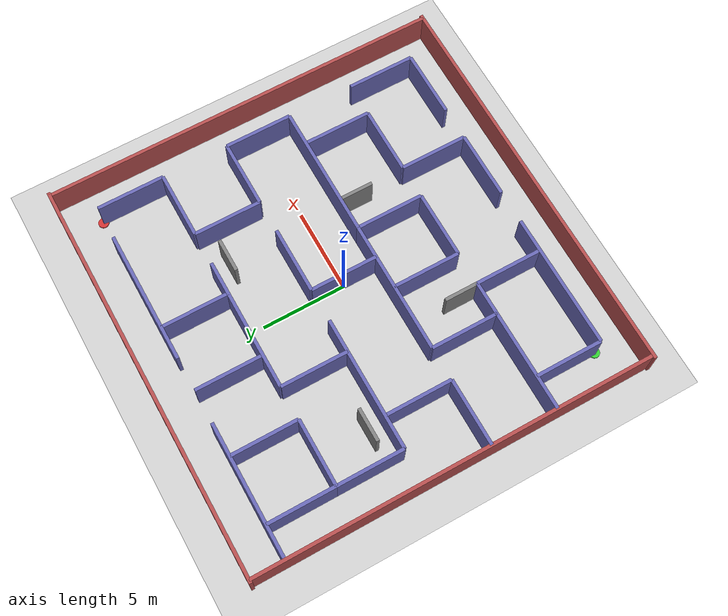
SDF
<?xml version="1.0"?>
<sdf version="1.9" xmlns:xsi="http://www.w3.org/2001/XMLSchema-instance"
    xsi:noNamespaceSchemaLocation="http://sdformat.org/schemas/root.xsd">
    <world name="complex_maze">

        <!-- Configuración de física -->
        <physics name="fast" type="ignored">
            <max_step_size>0.001</max_step_size>
            <real_time_factor>1.0</real_time_factor>
        </physics>

        <!-- Plugins del sistema -->
        <plugin name="gz::sim::systems::Sensors" filename="gz-sim-sensors-system"> <render_engine>ogre2</render_engine>
        </plugin>
        <plugin filename="gz-sim-physics-system" name="gz::sim::systems::Physics">
        </plugin>
        <plugin filename="gz-sim-user-commands-system" name="gz::sim::systems::UserCommands">
        </plugin>
        <plugin filename="gz-sim-scene-broadcaster-system" name="gz::sim::systems::SceneBroadcaster">
        </plugin>
        <plugin filename="gz-sim-contact-system" name="gz::sim::systems::Contact">
        </plugin>
        <plugin name="gz::sim::systems::Imu" filename="gz-sim-imu-system">
        </plugin>

        <!-- Configuración de la escena -->
        <scene>
            <ambient>1 1 1 1</ambient>
            <background>0.3 0.7 0.9 1</background>
            <shadows>1</shadows>
            <grid>0</grid>
        </scene>

        <!-- GUI con barra lateral -->
        <gui fullscreen="0">

            <!-- Vista 3D -->
            <plugin filename="GzScene3D" name="3D View">
                <gz-gui>
                    <title>3D View</title>
                    <property type="bool" key="showTitleBar">false</property>
                    <property type="string" key="state">docked</property>
                </gz-gui>
                <engine>ogre2</engine>
                <scene>scene</scene>
                <ambient_light>0.4 0.4 0.4</ambient_light>
                <background_color>0.8 0.8 0.8</background_color>
                <camera_pose>0 -30 25 0 0.6 1.57</camera_pose>
            </plugin>

            <!-- Controles de Play/Pause/Step -->
            <plugin filename="WorldControl" name="World control">
                <gz-gui>
                    <title>World control</title>
                    <property type="bool" key="showTitleBar">false</property>
                    <property type="bool" key="resizable">false</property>
                    <property type="double" key="height">72</property>
                    <property type="double" key="width">121</property>
                    <property type="double" key="z">1</property>
                    <property type="string" key="state">floating</property>
                    <anchors target="3D View">
                        <line own="left" target="left"/>
                        <line own="bottom" target="bottom"/>
                    </anchors>
                </gz-gui>
                <play_pause>true</play_pause>
                <step>true</step>
                <start_paused>false</start_paused>
            </plugin>

            <!-- Estadísticas del mundo -->
            <plugin filename="WorldStats" name="World stats">
                <gz-gui>
                    <title>World stats</title>
                    <property type="bool" key="showTitleBar">false</property>
                    <property type="bool" key="resizable">false</property>
                    <property type="double" key="height">110</property>
                    <property type="double" key="width">290</property>
                    <property type="double" key="z">1</property>
                    <property type="string" key="state">floating</property>
                    <anchors target="3D View">
                        <line own="right" target="right"/>
                        <line own="bottom" target="bottom"/>
                    </anchors>
                </gz-gui>
                <sim_time>true</sim_time>
                <real_time>true</real_time>
                <real_time_factor>true</real_time_factor>
                <iterations>true</iterations>
            </plugin>

            <!-- Insertar formas simples -->
            <plugin filename="Shapes" name="Shapes">
                <gz-gui>
                    <property key="resizable" type="bool">false</property>
                    <property key="x" type="double">0</property>
                    <property key="y" type="double">0</property>
                    <property key="width" type="double">250</property>
                    <property key="height" type="double">50</property>
                    <property key="state" type="string">floating</property>
                    <property key="showTitleBar" type="bool">false</property>
                    <property key="cardBackground" type="string">#666666</property>
                </gz-gui>
            </plugin>

            <!-- Insertar luces -->
            <plugin filename="Lights" name="Lights">
                <gz-gui>
                    <property key="resizable" type="bool">false</property>
                    <property key="x" type="double">250</property>
                    <property key="y" type="double">0</property>
                    <property key="width" type="double">150</property>
                    <property key="height" type="double">50</property>
                    <property key="state" type="string">floating</property>
                    <property key="showTitleBar" type="bool">false</property>
                    <property key="cardBackground" type="string">#666666</property>
                </gz-gui>
            </plugin>

            <!-- Control de transformaciones -->
            <plugin filename="TransformControl" name="Transform control">
                <gz-gui>
                    <property key="resizable" type="bool">false</property>
                    <property key="x" type="double">0</property>
                    <property key="y" type="double">50</property>
                    <property key="width" type="double">250</property>
                    <property key="height" type="double">50</property>
                    <property key="state" type="string">floating</property>
                    <property key="showTitleBar" type="bool">false</property>
                    <property key="cardBackground" type="string">#777777</property>
                </gz-gui>
            </plugin>

            <!-- Captura de pantalla -->
            <plugin filename="Screenshot" name="Screenshot">
                <gz-gui>
                    <property key="resizable" type="bool">false</property>
                    <property key="x" type="double">250</property>
                    <property key="y" type="double">50</property>
                    <property key="width" type="double">50</property>
                    <property key="height" type="double">50</property>
                    <property key="state" type="string">floating</property>
                    <property key="showTitleBar" type="bool">false</property>
                    <property key="cardBackground" type="string">#777777</property>
                </gz-gui>
            </plugin>

            <!-- Árbol de entidades (barra lateral) -->
            <plugin filename="EntityTree" name="Entity tree">
                <gz-gui>
                    <property type="string" key="state">docked_collapsed</property>
                </gz-gui>
            </plugin>

            <!-- Inspector de componentes (barra lateral) -->
            <plugin filename="ComponentInspector" name="Component inspector">
                <gz-gui>
                    <property type="string" key="state">docked_collapsed</property>
                </gz-gui>
            </plugin>
        </gui>

        <!-- Iluminación -->
        <light type="directional" name="sun">
            <cast_shadows>true</cast_shadows>
            <pose>0 0 10 0 0 0</pose>
            <diffuse>0.8 0.8 0.8 1</diffuse>
            <specular>0.2 0.2 0.2 1</specular>
            <attenuation>
                <range>1000</range>
                <constant>0.9</constant>
                <linear>0.01</linear>
                <quadratic>0.001</quadratic>
            </attenuation>
            <direction>-0.5 0.1 -0.9</direction>
        </light>

        <!-- Suelo -->
        <model name="ground_plane">
            <static>true</static>
            <link name="link">
                <collision name="collision">
                    <geometry>
                        <plane>
                            <normal>0 0 1</normal>
                            <size>100 100</size>
                        </plane>
                    </geometry>
                </collision>
                <visual name="visual">
                    <geometry>
                        <plane>
                            <normal>0 0 1</normal>
                            <size>100 100</size>
                        </plane>
                    </geometry>
                    <material>
                        <ambient>0.8 0.8 0.8 1</ambient>
                        <diffuse>0.8 0.8 0.8 1</diffuse>
                        <specular>0.8 0.8 0.8 1</specular>
                    </material>
                </visual>
            </link>
        </model>

        <!-- PAREDES DEL LABERINTO -->
        <!-- Paredes exteriores -->
        <model name="wall_outer_north">
            <static>true</static>
            <pose>0 12 1 0 0 0</pose>
            <link name="link">
                <collision name="collision">
                    <geometry>
                        <box>
                            <size>24.4 0.2 2</size>
                        </box>
                    </geometry>
                </collision>
                <visual name="visual">
                    <geometry>
                        <box>
                            <size>24.4 0.2 2</size>
                        </box>
                    </geometry>
                    <material>
                        <ambient>0.7 0.3 0.3 1</ambient>
                        <diffuse>0.7 0.3 0.3 1</diffuse>
                    </material>
                </visual>
            </link>
        </model>

        <model name="wall_outer_south">
            <static>true</static>
            <pose>0 -12 1 0 0 0</pose>
            <link name="link">
                <collision name="collision">
                    <geometry>
                        <box>
                            <size>24.4 0.2 2</size>
                        </box>
                    </geometry>
                </collision>
                <visual name="visual">
                    <geometry>
                        <box>
                            <size>24.4 0.2 2</size>
                        </box>
                    </geometry>
                    <material>
                        <ambient>0.7 0.3 0.3 1</ambient>
                        <diffuse>0.7 0.3 0.3 1</diffuse>
                    </material>
                </visual>
            </link>
        </model>

        <model name="wall_outer_east">
            <static>true</static>
            <pose>12 0 1 0 0 0</pose>
            <link name="link">
                <collision name="collision">
                    <geometry>
                        <box>
                            <size>0.2 24 2</size>
                        </box>
                    </geometry>
                </collision>
                <visual name="visual">
                    <geometry>
                        <box>
                            <size>0.2 24 2</size>
                        </box>
                    </geometry>
                    <material>
                        <ambient>0.7 0.3 0.3 1</ambient>
                        <diffuse>0.7 0.3 0.3 1</diffuse>
                    </material>
                </visual>
            </link>
        </model>

        <model name="wall_outer_west">
            <static>true</static>
            <pose>-12 0 1 0 0 0</pose>
            <link name="link">
                <collision name="collision">
                    <geometry>
                        <box>
                            <size>0.2 24 2</size>
                        </box>
                    </geometry>
                </collision>
                <visual name="visual">
                    <geometry>
                        <box>
                            <size>0.2 24 2</size>
                        </box>
                    </geometry>
                    <material>
                        <ambient>0.7 0.3 0.3 1</ambient>
                        <diffuse>0.7 0.3 0.3 1</diffuse>
                    </material>
                </visual>
            </link>
        </model>

        <!-- Paredes interiores del laberinto -->
        <model name="wall_1">
            <static>true</static>
            <pose>-8 10 1 0 0 0</pose>
            <link name="link">
                <collision name="collision">
                    <geometry><box><size>8 0.2 2</size></box></geometry>
                </collision>
                <visual name="visual">
                    <geometry><box><size>8 0.2 2</size></box></geometry>
                    <material>
                        <ambient>0.4 0.4 0.7 1</ambient>
                        <diffuse>0.4 0.4 0.7 1</diffuse>
                    </material>
                </visual>
            </link>
        </model>

        <model name="wall_2">
            <static>true</static>
            <pose>4 10 1 0 0 0</pose>
            <link name="link">
                <collision name="collision">
                    <geometry><box><size>8 0.2 2</size></box></geometry>
                </collision>
                <visual name="visual">
                    <geometry><box><size>8 0.2 2</size></box></geometry>
                    <material>
                        <ambient>0.4 0.4 0.7 1</ambient>
                        <diffuse>0.4 0.4 0.7 1</diffuse>
                    </material>
                </visual>
            </link>
        </model>

        <model name="wall_3">
            <static>true</static>
            <pose>-10 8 1 0 0 1.5708</pose>
            <link name="link">
                <collision name="collision">
                    <geometry><box><size>4 0.2 2</size></box></geometry>
                </collision>
                <visual name="visual">
                    <geometry><box><size>4 0.2 2</size></box></geometry>
                    <material>
                        <ambient>0.4 0.4 0.7 1</ambient>
                        <diffuse>0.4 0.4 0.7 1</diffuse>
                    </material>
                </visual>
            </link>
        </model>

        <model name="wall_4">
            <static>true</static>
            <pose>-6 8 1 0 0 1.5708</pose>
            <link name="link">
                <collision name="collision">
                    <geometry><box><size>4 0.2 2</size></box></geometry>
                </collision>
                <visual name="visual">
                    <geometry><box><size>4 0.2 2</size></box></geometry>
                    <material>
                        <ambient>0.4 0.4 0.7 1</ambient>
                        <diffuse>0.4 0.4 0.7 1</diffuse>
                    </material>
                </visual>
            </link>
        </model>

        <model name="wall_5">
            <static>true</static>
            <pose>-2 8 1 0 0 1.5708</pose>
            <link name="link">
                <collision name="collision">
                    <geometry><box><size>4 0.2 2</size></box></geometry>
                </collision>
                <visual name="visual">
                    <geometry><box><size>4 0.2 2</size></box></geometry>
                    <material>
                        <ambient>0.4 0.4 0.7 1</ambient>
                        <diffuse>0.4 0.4 0.7 1</diffuse>
                    </material>
                </visual>
            </link>
        </model>

        <model name="wall_6">
            <static>true</static>
            <pose>2 8 1 0 0 1.5708</pose>
            <link name="link">
                <collision name="collision">
                    <geometry><box><size>4 0.2 2</size></box></geometry>
                </collision>
                <visual name="visual">
                    <geometry><box><size>4 0.2 2</size></box></geometry>
                    <material>
                        <ambient>0.4 0.4 0.7 1</ambient>
                        <diffuse>0.4 0.4 0.7 1</diffuse>
                    </material>
                </visual>
            </link>
        </model>

        <model name="wall_7">
            <static>true</static>
            <pose>10 8 1 0 0 1.5708</pose>
            <link name="link">
                <collision name="collision">
                    <geometry><box><size>4 0.2 2</size></box></geometry>
                </collision>
                <visual name="visual">
                    <geometry><box><size>4 0.2 2</size></box></geometry>
                    <material>
                        <ambient>0.4 0.4 0.7 1</ambient>
                        <diffuse>0.4 0.4 0.7 1</diffuse>
                    </material>
                </visual>
            </link>
        </model>

        <model name="wall_8">
            <static>true</static>
            <pose>-8 6 1 0 0 0</pose>
            <link name="link">
                <collision name="collision">
                    <geometry><box><size>4 0.2 2</size></box></geometry>
                </collision>
                <visual name="visual">
                    <geometry><box><size>4 0.2 2</size></box></geometry>
                    <material>
                        <ambient>0.4 0.4 0.7 1</ambient>
                        <diffuse>0.4 0.4 0.7 1</diffuse>
                    </material>
                </visual>
            </link>
        </model>

        <model name="wall_9">
            <static>true</static>
            <pose>0 6 1 0 0 0</pose>
            <link name="link">
                <collision name="collision">
                    <geometry><box><size>8 0.2 2</size></box></geometry>
                </collision>
                <visual name="visual">
                    <geometry><box><size>8 0.2 2</size></box></geometry>
                    <material>
                        <ambient>0.4 0.4 0.7 1</ambient>
                        <diffuse>0.4 0.4 0.7 1</diffuse>
                    </material>
                </visual>
            </link>
        </model>

        <model name="wall_10">
            <static>true</static>
            <pose>8 6 1 0 0 0</pose>
            <link name="link">
                <collision name="collision">
                    <geometry><box><size>4 0.2 2</size></box></geometry>
                </collision>
                <visual name="visual">
                    <geometry><box><size>4 0.2 2</size></box></geometry>
                    <material>
                        <ambient>0.4 0.4 0.7 1</ambient>
                        <diffuse>0.4 0.4 0.7 1</diffuse>
                    </material>
                </visual>
            </link>
        </model>

        <model name="wall_11">
            <static>true</static>
            <pose>-10 4 1 0 0 1.5708</pose>
            <link name="link">
                <collision name="collision">
                    <geometry><box><size>4 0.2 2</size></box></geometry>
                </collision>
                <visual name="visual">
                    <geometry><box><size>4 0.2 2</size></box></geometry>
                    <material>
                        <ambient>0.4 0.4 0.7 1</ambient>
                        <diffuse>0.4 0.4 0.7 1</diffuse>
                    </material>
                </visual>
            </link>
        </model>

        <model name="wall_12">
            <static>true</static>
            <pose>-4 4 1 0 0 1.5708</pose>
            <link name="link">
                <collision name="collision">
                    <geometry><box><size>4 0.2 2</size></box></geometry>
                </collision>
                <visual name="visual">
                    <geometry><box><size>4 0.2 2</size></box></geometry>
                    <material>
                        <ambient>0.4 0.4 0.7 1</ambient>
                        <diffuse>0.4 0.4 0.7 1</diffuse>
                    </material>
                </visual>
            </link>
        </model>

        <model name="wall_13">
            <static>true</static>
            <pose>6 4 1 0 0 1.5708</pose>
            <link name="link">
                <collision name="collision">
                    <geometry><box><size>4 0.2 2</size></box></geometry>
                </collision>
                <visual name="visual">
                    <geometry><box><size>4 0.2 2</size></box></geometry>
                    <material>
                        <ambient>0.4 0.4 0.7 1</ambient>
                        <diffuse>0.4 0.4 0.7 1</diffuse>
                    </material>
                </visual>
            </link>
        </model>

        <model name="wall_14">
            <static>true</static>
            <pose>-6 2 1 0 0 0</pose>
            <link name="link">
                <collision name="collision">
                    <geometry><box><size>8 0.2 2</size></box></geometry>
                </collision>
                <visual name="visual">
                    <geometry><box><size>8 0.2 2</size></box></geometry>
                    <material>
                        <ambient>0.4 0.4 0.7 1</ambient>
                        <diffuse>0.4 0.4 0.7 1</diffuse>
                    </material>
                </visual>
            </link>
        </model>

        <model name="wall_15">
            <static>true</static>
            <pose>2 2 1 0 0 0</pose>
            <link name="link">
                <collision name="collision">
                    <geometry><box><size>4 0.2 2</size></box></geometry>
                </collision>
                <visual name="visual">
                    <geometry><box><size>4 0.2 2</size></box></geometry>
                    <material>
                        <ambient>0.4 0.4 0.7 1</ambient>
                        <diffuse>0.4 0.4 0.7 1</diffuse>
                    </material>
                </visual>
            </link>
        </model>

        <model name="wall_16">
            <static>true</static>
            <pose>8 2 1 0 0 0</pose>
            <link name="link">
                <collision name="collision">
                    <geometry><box><size>4 0.2 2</size></box></geometry>
                </collision>
                <visual name="visual">
                    <geometry><box><size>4 0.2 2</size></box></geometry>
                    <material>
                        <ambient>0.4 0.4 0.7 1</ambient>
                        <diffuse>0.4 0.4 0.7 1</diffuse>
                    </material>
                </visual>
            </link>
        </model>

        <model name="wall_17">
            <static>true</static>
            <pose>-8 0 1 0 0 1.5708</pose>
            <link name="link">
                <collision name="collision">
                    <geometry><box><size>4 0.2 2</size></box></geometry>
                </collision>
                <visual name="visual">
                    <geometry><box><size>4 0.2 2</size></box></geometry>
                    <material>
                        <ambient>0.4 0.4 0.7 1</ambient>
                        <diffuse>0.4 0.4 0.7 1</diffuse>
                    </material>
                </visual>
            </link>
        </model>

        <model name="wall_18">
            <static>true</static>
            <pose>0 0 1 0 0 1.5708</pose>
            <link name="link">
                <collision name="collision">
                    <geometry><box><size>4 0.2 2</size></box></geometry>
                </collision>
                <visual name="visual">
                    <geometry><box><size>4 0.2 2</size></box></geometry>
                    <material>
                        <ambient>0.4 0.4 0.7 1</ambient>
                        <diffuse>0.4 0.4 0.7 1</diffuse>
                    </material>
                </visual>
            </link>
        </model>

        <model name="wall_19">
            <static>true</static>
            <pose>10 0 1 0 0 1.5708</pose>
            <link name="link">
                <collision name="collision">
                    <geometry><box><size>4 0.2 2</size></box></geometry>
                </collision>
                <visual name="visual">
                    <geometry><box><size>4 0.2 2</size></box></geometry>
                    <material>
                        <ambient>0.4 0.4 0.7 1</ambient>
                        <diffuse>0.4 0.4 0.7 1</diffuse>
                    </material>
                </visual>
            </link>
        </model>

        <model name="wall_20">
            <static>true</static>
            <pose>-10 -2 1 0 0 0</pose>
            <link name="link">
                <collision name="collision">
                    <geometry><box><size>4 0.2 2</size></box></geometry>
                </collision>
                <visual name="visual">
                    <geometry><box><size>4 0.2 2</size></box></geometry>
                    <material>
                        <ambient>0.4 0.4 0.7 1</ambient>
                        <diffuse>0.4 0.4 0.7 1</diffuse>
                    </material>
                </visual>
            </link>
        </model>

        <model name="wall_21">
            <static>true</static>
            <pose>-2 -2 1 0 0 0</pose>
            <link name="link">
                <collision name="collision">
                    <geometry><box><size>8 0.2 2</size></box></geometry>
                </collision>
                <visual name="visual">
                    <geometry><box><size>8 0.2 2</size></box></geometry>
                    <material>
                        <ambient>0.4 0.4 0.7 1</ambient>
                        <diffuse>0.4 0.4 0.7 1</diffuse>
                    </material>
                </visual>
            </link>
        </model>

        <model name="wall_22">
            <static>true</static>
            <pose>6 -2 1 0 0 0</pose>
            <link name="link">
                <collision name="collision">
                    <geometry><box><size>8 0.2 2</size></box></geometry>
                </collision>
                <visual name="visual">
                    <geometry><box><size>8 0.2 2</size></box></geometry>
                    <material>
                        <ambient>0.4 0.4 0.7 1</ambient>
                        <diffuse>0.4 0.4 0.7 1</diffuse>
                    </material>
                </visual>
            </link>
        </model>

        <model name="wall_23">
            <static>true</static>
            <pose>-6 -4 1 0 0 1.5708</pose>
            <link name="link">
                <collision name="collision">
                    <geometry><box><size>4 0.2 2</size></box></geometry>
                </collision>
                <visual name="visual">
                    <geometry><box><size>4 0.2 2</size></box></geometry>
                    <material>
                        <ambient>0.4 0.4 0.7 1</ambient>
                        <diffuse>0.4 0.4 0.7 1</diffuse>
                    </material>
                </visual>
            </link>
        </model>

        <model name="wall_24">
            <static>true</static>
            <pose>-2 -4 1 0 0 1.5708</pose>
            <link name="link">
                <collision name="collision">
                    <geometry><box><size>4 0.2 2</size></box></geometry>
                </collision>
                <visual name="visual">
                    <geometry><box><size>4 0.2 2</size></box></geometry>
                    <material>
                        <ambient>0.4 0.4 0.7 1</ambient>
                        <diffuse>0.4 0.4 0.7 1</diffuse>
                    </material>
                </visual>
            </link>
        </model>

        <model name="wall_25">
            <static>true</static>
            <pose>2 -4 1 0 0 1.5708</pose>
            <link name="link">
                <collision name="collision">
                    <geometry><box><size>4 0.2 2</size></box></geometry>
                </collision>
                <visual name="visual">
                    <geometry><box><size>4 0.2 2</size></box></geometry>
                    <material>
                        <ambient>0.4 0.4 0.7 1</ambient>
                        <diffuse>0.4 0.4 0.7 1</diffuse>
                    </material>
                </visual>
            </link>
        </model>

        <model name="wall_26">
            <static>true</static>
            <pose>8 -4 1 0 0 1.5708</pose>
            <link name="link">
                <collision name="collision">
                    <geometry><box><size>4 0.2 2</size></box></geometry>
                </collision>
                <visual name="visual">
                    <geometry><box><size>4 0.2 2</size></box></geometry>
                    <material>
                        <ambient>0.4 0.4 0.7 1</ambient>
                        <diffuse>0.4 0.4 0.7 1</diffuse>
                    </material>
                </visual>
            </link>
        </model>

        <model name="wall_27">
            <static>true</static>
            <pose>-8 -6 1 0 0 0</pose>
            <link name="link">
                <collision name="collision">
                    <geometry><box><size>8 0.2 2</size></box></geometry>
                </collision>
                <visual name="visual">
                    <geometry><box><size>8 0.2 2</size></box></geometry>
                    <material>
                        <ambient>0.4 0.4 0.7 1</ambient>
                        <diffuse>0.4 0.4 0.7 1</diffuse>
                    </material>
                </visual>
            </link>
        </model>

        <model name="wall_28">
            <static>true</static>
            <pose>0 -6 1 0 0 0</pose>
            <link name="link">
                <collision name="collision">
                    <geometry><box><size>4 0.2 2</size></box></geometry>
                </collision>
                <visual name="visual">
                    <geometry><box><size>4 0.2 2</size></box></geometry>
                    <material>
                        <ambient>0.4 0.4 0.7 1</ambient>
                        <diffuse>0.4 0.4 0.7 1</diffuse>
                    </material>
                </visual>
            </link>
        </model>

        <model name="wall_29">
            <static>true</static>
            <pose>6 -6 1 0 0 0</pose>
            <link name="link">
                <collision name="collision">
                    <geometry><box><size>4 0.2 2</size></box></geometry>
                </collision>
                <visual name="visual">
                    <geometry><box><size>4 0.2 2</size></box></geometry>
                    <material>
                        <ambient>0.4 0.4 0.7 1</ambient>
                        <diffuse>0.4 0.4 0.7 1</diffuse>
                    </material>
                </visual>
            </link>
        </model>

        <model name="wall_30">
            <static>true</static>
            <pose>-10 -8 1 0 0 1.5708</pose>
            <link name="link">
                <collision name="collision">
                    <geometry><box><size>4 0.2 2</size></box></geometry>
                </collision>
                <visual name="visual">
                    <geometry><box><size>4 0.2 2</size></box></geometry>
                    <material>
                        <ambient>0.4 0.4 0.7 1</ambient>
                        <diffuse>0.4 0.4 0.7 1</diffuse>
                    </material>
                </visual>
            </link>
        </model>

        <model name="wall_31">
            <static>true</static>
            <pose>-4 -8 1 0 0 1.5708</pose>
            <link name="link">
                <collision name="collision">
                    <geometry><box><size>4 0.2 2</size></box></geometry>
                </collision>
                <visual name="visual">
                    <geometry><box><size>4 0.2 2</size></box></geometry>
                    <material>
                        <ambient>0.4 0.4 0.7 1</ambient>
                        <diffuse>0.4 0.4 0.7 1</diffuse>
                    </material>
                </visual>
            </link>
        </model>

        <model name="wall_32">
            <static>true</static>
            <pose>4 -8 1 0 0 1.5708</pose>
            <link name="link">
                <collision name="collision">
                    <geometry><box><size>4 0.2 2</size></box></geometry>
                </collision>
                <visual name="visual">
                    <geometry><box><size>4 0.2 2</size></box></geometry>
                    <material>
                        <ambient>0.4 0.4 0.7 1</ambient>
                        <diffuse>0.4 0.4 0.7 1</diffuse>
                    </material>
                </visual>
            </link>
        </model>

        <model name="wall_33">
            <static>true</static>
            <pose>10 -8 1 0 0 1.5708</pose>
            <link name="link">
                <collision name="collision">
                    <geometry><box><size>4 0.2 2</size></box></geometry>
                </collision>
                <visual name="visual">
                    <geometry><box><size>4 0.2 2</size></box></geometry>
                    <material>
                        <ambient>0.4 0.4 0.7 1</ambient>
                        <diffuse>0.4 0.4 0.7 1</diffuse>
                    </material>
                </visual>
            </link>
        </model>

        <model name="wall_34">
            <static>true</static>
            <pose>-6 -10 1 0 0 0</pose>
            <link name="link">
                <collision name="collision">
                    <geometry><box><size>8 0.2 2</size></box></geometry>
                </collision>
                <visual name="visual">
                    <geometry><box><size>8 0.2 2</size></box></geometry>
                    <material>
                        <ambient>0.4 0.4 0.7 1</ambient>
                        <diffuse>0.4 0.4 0.7 1</diffuse>
                    </material>
                </visual>
            </link>
        </model>

        <model name="wall_35">
            <static>true</static>
            <pose>2 -10 1 0 0 0</pose>
            <link name="link">
                <collision name="collision">
                    <geometry><box><size>4 0.2 2</size></box></geometry>
                </collision>
                <visual name="visual">
                    <geometry><box><size>4 0.2 2</size></box></geometry>
                    <material>
                        <ambient>0.4 0.4 0.7 1</ambient>
                        <diffuse>0.4 0.4 0.7 1</diffuse>
                    </material>
                </visual>
            </link>
        </model>

        <model name="wall_36">
            <static>true</static>
            <pose>8 -10 1 0 0 0</pose>
            <link name="link">
                <collision name="collision">
                    <geometry><box><size>4 0.2 2</size></box></geometry>
                </collision>
                <visual name="visual">
                    <geometry><box><size>4 0.2 2</size></box></geometry>
                    <material>
                        <ambient>0.4 0.4 0.7 1</ambient>
                        <diffuse>0.4 0.4 0.7 1</diffuse>
                    </material>
                </visual>
            </link>
        </model>

        <!-- Obstáculos adicionales -->
        <model name="wall_37">
            <static>true</static>
            <pose>4 5 1 0 0 0</pose>
            <link name="link">
                <collision name="collision">
                    <geometry><box><size>2 0.2 2</size></box></geometry>
                </collision>
                <visual name="visual">
                    <geometry><box><size>2 0.2 2</size></box></geometry>
                    <material>
                        <ambient>0.5 0.5 0.5 1</ambient>
                        <diffuse>0.5 0.5 0.5 1</diffuse>
                    </material>
                </visual>
            </link>
        </model>

        <model name="wall_38">
            <static>true</static>
            <pose>-8 3 1 0 0 0</pose>
            <link name="link">
                <collision name="collision">
                    <geometry><box><size>2 0.2 2</size></box></geometry>
                </collision>
                <visual name="visual">
                    <geometry><box><size>2 0.2 2</size></box></geometry>
                    <material>
                        <ambient>0.5 0.5 0.5 1</ambient>
                        <diffuse>0.5 0.5 0.5 1</diffuse>
                    </material>
                </visual>
            </link>
        </model>

        <model name="wall_39">
            <static>true</static>
            <pose>4 -3 1 0 0 1.5708</pose>
            <link name="link">
                <collision name="collision">
                    <geometry><box><size>2 0.2 2</size></box></geometry>
                </collision>
                <visual name="visual">
                    <geometry><box><size>2 0.2 2</size></box></geometry>
                    <material>
                        <ambient>0.5 0.5 0.5 1</ambient>
                        <diffuse>0.5 0.5 0.5 1</diffuse>
                    </material>
                </visual>
            </link>
        </model>

        <model name="wall_40">
            <static>true</static>
            <pose>-4 -5 1 0 0 1.5708</pose>
            <link name="link">
                <collision name="collision">
                    <geometry><box><size>2 0.2 2</size></box></geometry>
                </collision>
                <visual name="visual">
                    <geometry><box><size>2 0.2 2</size></box></geometry>
                    <material>
                        <ambient>0.5 0.5 0.5 1</ambient>
                        <diffuse>0.5 0.5 0.5 1</diffuse>
                    </material>
                </visual>
            </link>
        </model>

        <!-- Marcador de inicio (verde) -->
        <model name="start_marker">
            <static>true</static>
            <pose>-10 -10 0.05 0 0 0</pose>
            <link name="link">
                <visual name="visual">
                    <geometry>
                        <cylinder>
                            <radius>0.3</radius>
                            <length>0.1</length>
                        </cylinder>
                    </geometry>
                    <material>
                        <ambient>0.2 0.8 0.2 1</ambient>
                        <diffuse>0.2 0.8 0.2 1</diffuse>
                    </material>
                </visual>
            </link>
        </model>

        <!-- Marcador de meta (rojo) -->
        <model name="goal_marker">
            <static>true</static>
            <pose>10 10 0.05 0 0 0</pose>
            <link name="link">
                <visual name="visual">
                    <geometry>
                        <cylinder>
                            <radius>0.3</radius>
                            <length>0.1</length>
                        </cylinder>
                    </geometry>
                    <material>
                        <ambient>0.8 0.2 0.2 1</ambient>
                        <diffuse>0.8 0.2 0.2 1</diffuse>
                    </material>
                </visual>
            </link>
        </model>

    </world>
</sdf>
